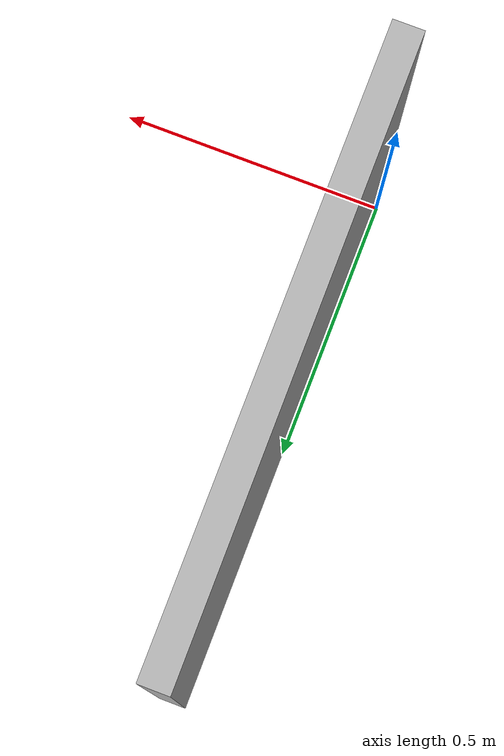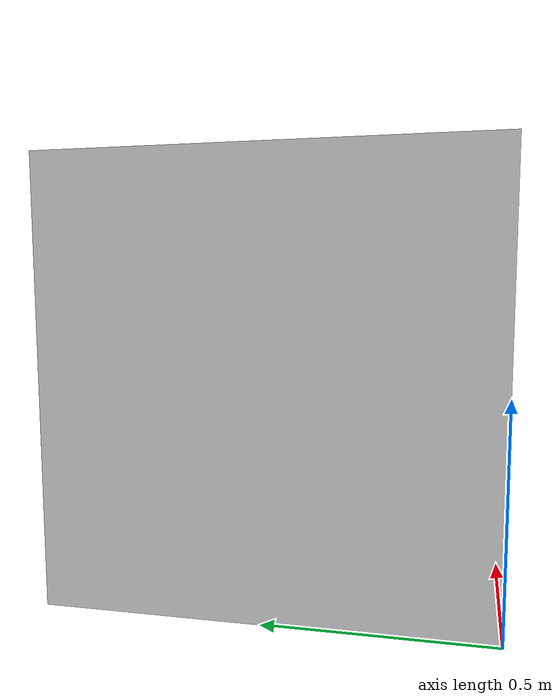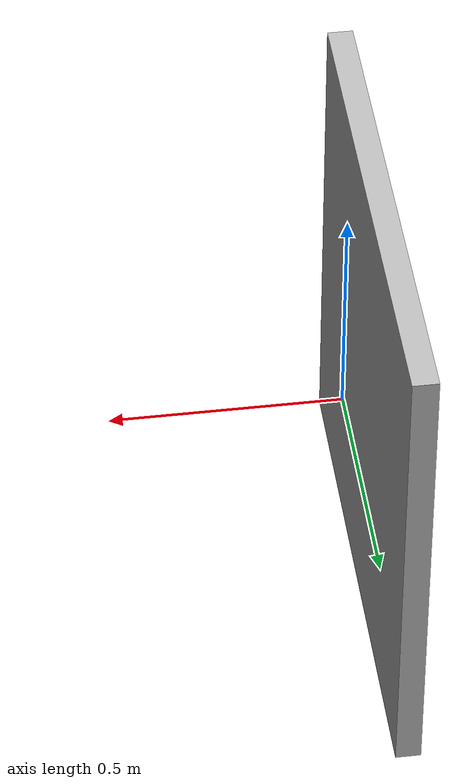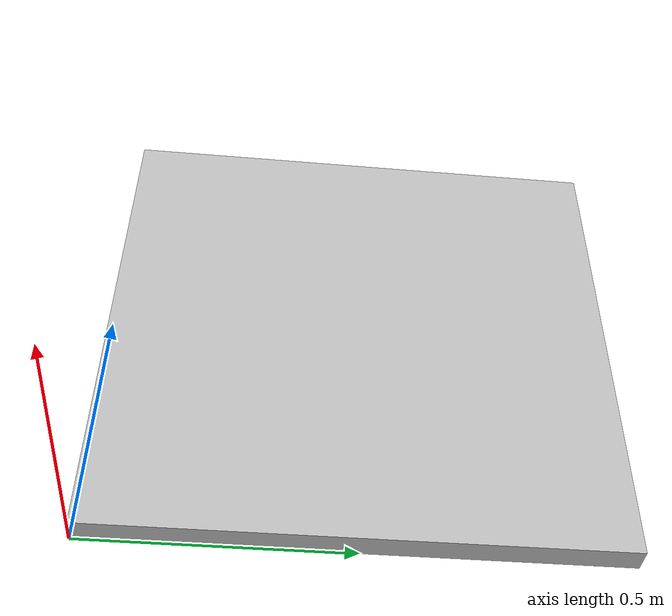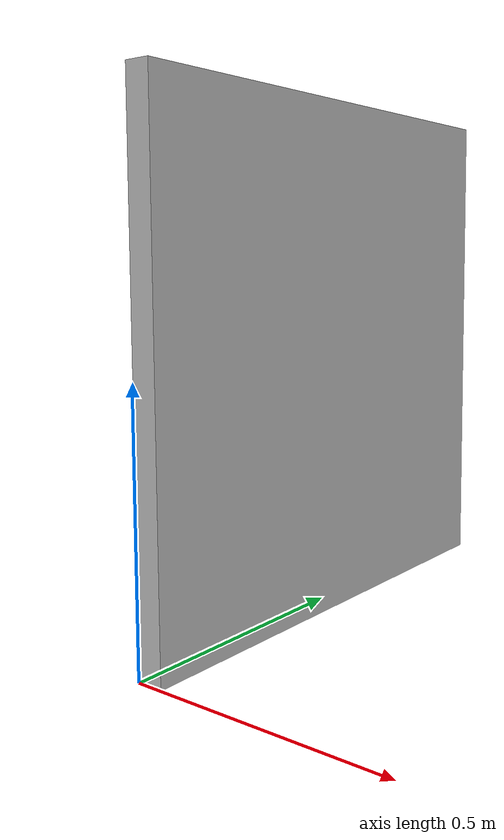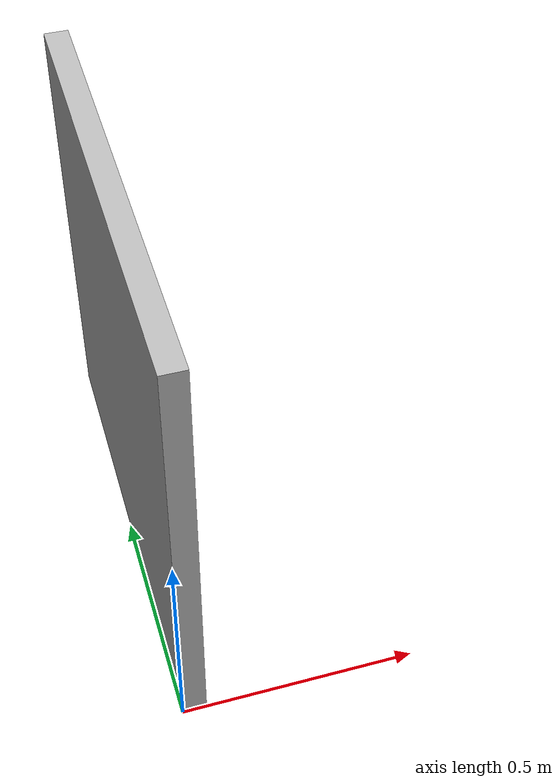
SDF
<?xml version="1.0" ?>
<sdf version="1.6">
  <model name="board">

    <!-- Board is fixed in the environment -->
    <static>true</static>

    <link name="link">

      <!-- Pose relative to model frame -->
      <pose>0 0 0 0 0 0</pose>

      <!-- Collision: used for physics interaction -->
      <collision name="collision">
        <geometry>
          <mesh>
            <uri>model://board/meshes/board.stl</uri>
            <!-- OpenSCAD model is in cm -->
            <scale>0.01 0.01 0.01</scale>
          </mesh>
        </geometry>

        <!-- Contact & friction parameters -->
        <surface>
          <friction>
            <ode>
              <mu>0.6</mu>
              <mu2>0.6</mu2>
            </ode>
          </friction>
          <contact>
            <ode>
              <kp>1000000</kp>
              <kd>50</kd>
              <max_vel>0.05</max_vel>
              <min_depth>0.001</min_depth>
            </ode>
          </contact>
        </surface>
      </collision>

      <!-- Visual: what you see -->
      <visual name="visual">
        <geometry>
          <mesh>
            <uri>model://board/meshes/board.stl</uri>
            <scale>0.01 0.01 0.01</scale>
          </mesh>
        </geometry>
      </visual>

    </link>
  </model>
</sdf>
